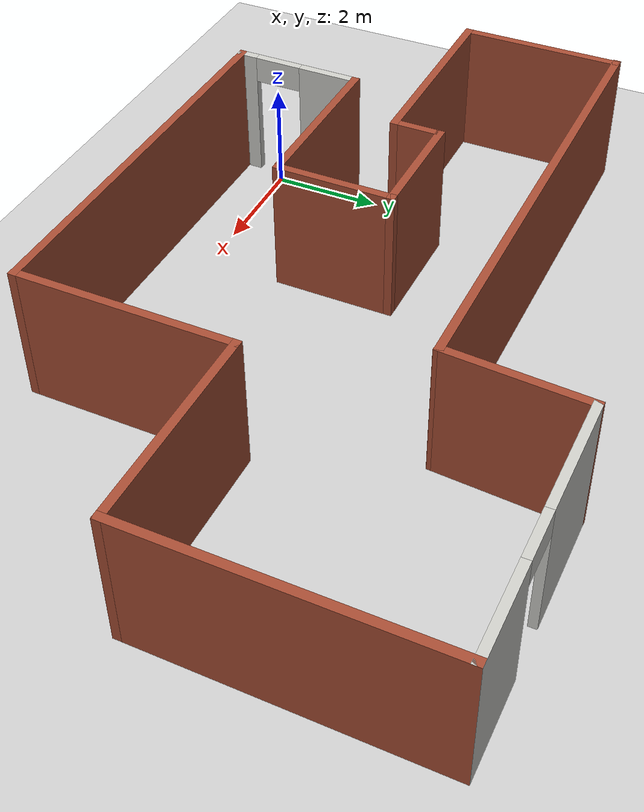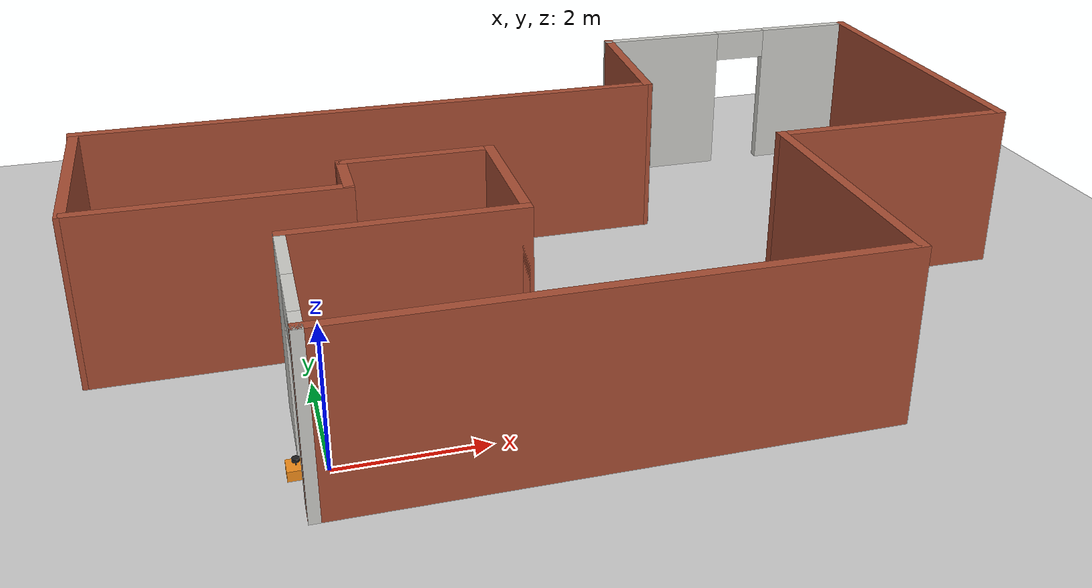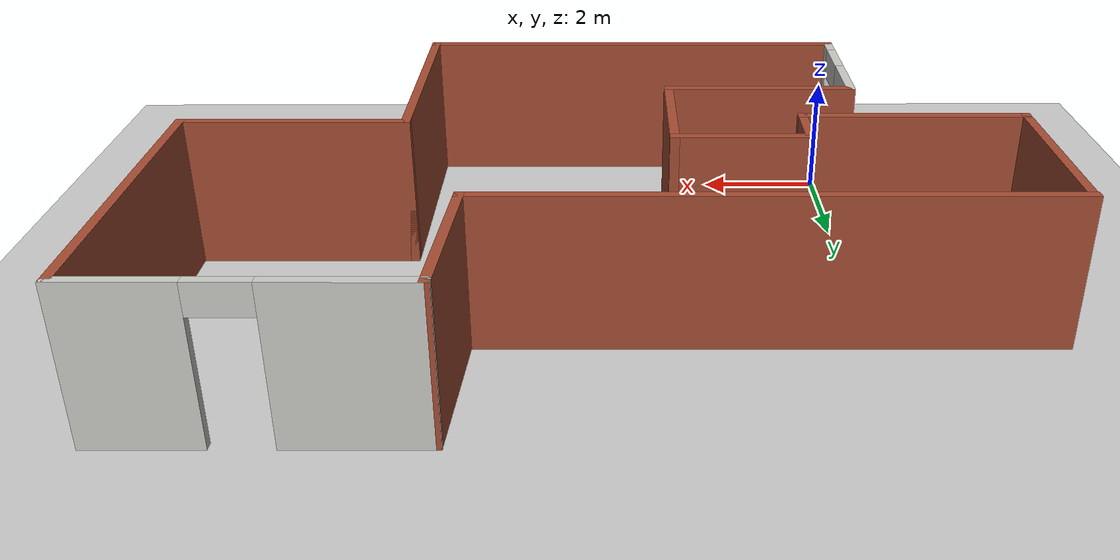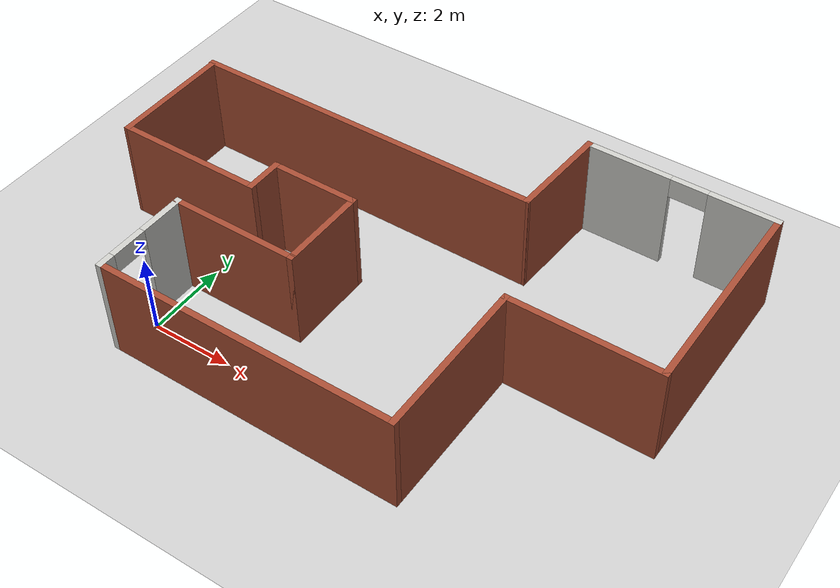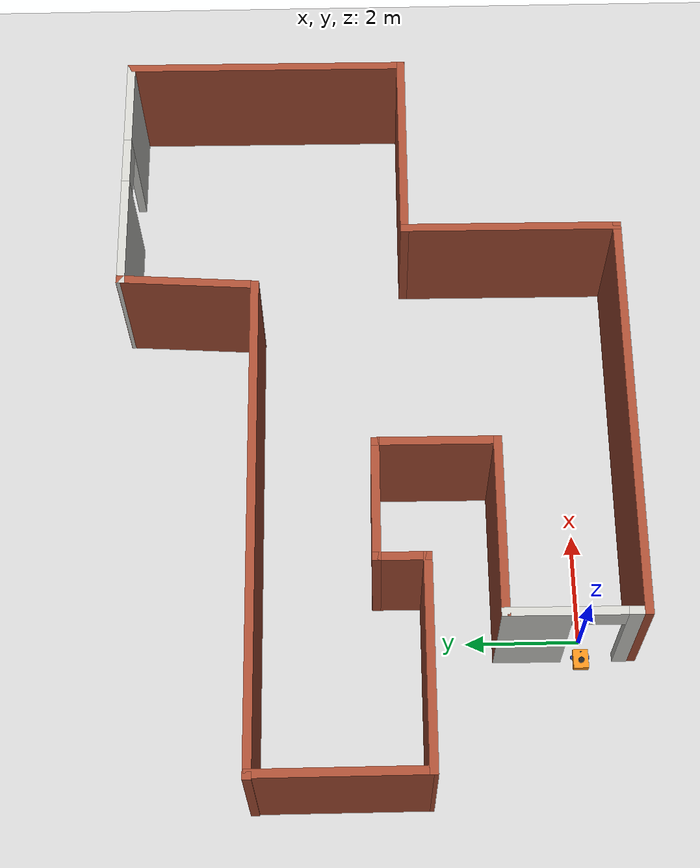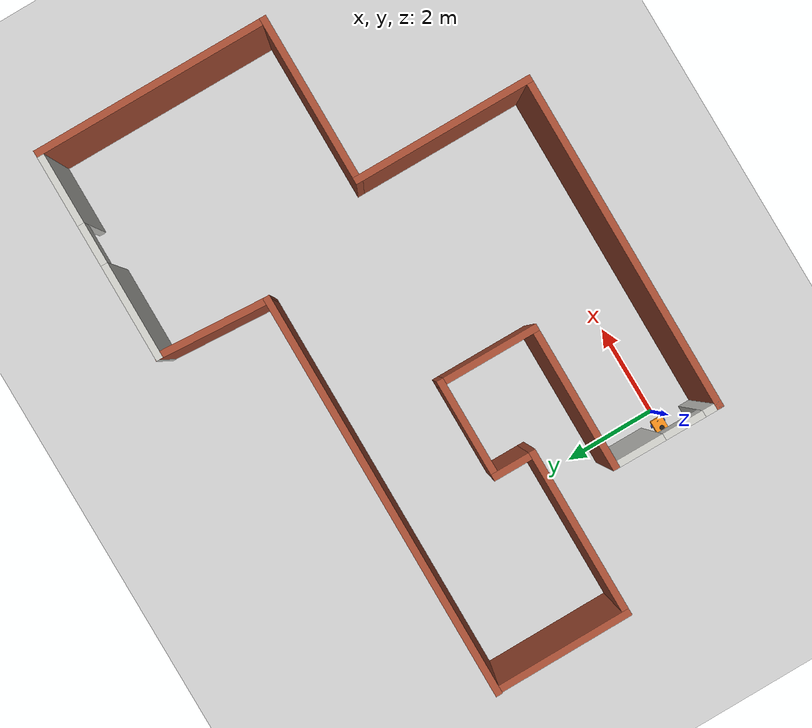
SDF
<sdf version="1.7">
 <world name="default">
  <light name="sun" type="directional">
   <pose>0 0 10 0 -0 0</pose>
   <diffuse>0.8 0.8 0.8 1</diffuse>
   <specular>0.2 0.2 0.2 1</specular>
   <attenuation>
    <range>1000</range>
    <constant>0.9</constant>
    <linear>0.01</linear>
    <quadratic>0.001</quadratic>
   </attenuation>
   <direction>-0.5 0.1 -0.9</direction>
   <spot><inner_angle>0</inner_angle><outer_angle>0</outer_angle><falloff>0</falloff></spot>
  </light>
  <model name="ground_plane">
   <static>1</static>
   <link name="link">
    <collision name="collision">
     <geometry><plane><normal>0 0 1</normal><size>100 100</size></plane></geometry>
     <surface><friction><ode><mu>100</mu><mu2>50</mu2></ode></friction></surface>
    </collision>
    <visual name="visual">
     <cast_shadows>0</cast_shadows>
     <geometry><plane><normal>0 0 1</normal><size>100 100</size></plane></geometry>
     <material>
      <script><uri>file://media/materials/scripts/gazebo.material</uri><name>Gazebo/Grey</name></script>
     </material>
    </visual>
   </link>
  </model>
  <gravity>0 0 -9.8</gravity>
  <magnetic_field>6e-06 2.3e-05 -4.2e-05</magnetic_field>
  <atmosphere type="adiabatic"/>
  <physics type="ode">
   <max_step_size>0.001</max_step_size>
   <real_time_factor>1</real_time_factor>
   <real_time_update_rate>1000</real_time_update_rate>
  </physics>
  <scene><ambient>0.4 0.4 0.4 1</ambient><background>0.7 0.7 0.7 1</background><shadows>1</shadows></scene>
  <audio><device>default</device></audio>
  <spherical_coordinates>
   <surface_model>EARTH_WGS84</surface_model>
   <latitude_deg>0</latitude_deg>
   <longitude_deg>0</longitude_deg>
   <elevation>0</elevation>
   <heading_deg>0</heading_deg>
  </spherical_coordinates>
  <model name="sim_robot">
   <link name="base_link">
    <inertial>
     <pose>-0.067475 0 0.081098 0 -0 0</pose>
     <mass>0.61</mass>
     <inertia>
      <ixx>0.00561003</ixx>
      <ixy>0</ixy>
      <ixz>0.000453811</ixz>
      <iyy>0.00760348</iyy>
      <iyz>0</iyz>
      <izz>0.00797093</izz>
     </inertia>
    </inertial>
    <collision name="base_link_fixed_joint_lump__chassis_collision">
     <pose>-0.0585 0 0.059 0 -0 0</pose>
     <geometry><box><size>0.335 0.265 0.138</size></box></geometry>
    </collision>
    <collision name="base_link_fixed_joint_lump__caster_wheel_collision_1">
     <pose>-0.151 0 -0.023 0 -0 0</pose>
     <geometry><sphere><radius>0.01</radius></sphere></geometry>
     <surface><friction><ode><mu>0.001</mu><mu2>0.001</mu2></ode></friction></surface>
    </collision>
    <collision name="base_link_fixed_joint_lump__laser_frame_collision_2">
     <pose>-0.104 0 0.202 0 -0 0</pose>
     <geometry><cylinder><length>0.04</length><radius>0.05</radius></cylinder></geometry>
    </collision>
    <visual name="base_link_fixed_joint_lump__chassis_visual">
     <pose>-0.0585 0 0.059 0 -0 0</pose>
     <geometry><box><size>0.335 0.265 0.138</size></box></geometry>
     <material>
      <script><name>Gazebo/Orange</name><uri>file://media/materials/scripts/gazebo.material</uri></script>
     </material>
    </visual>
    <visual name="base_link_fixed_joint_lump__camera_link_visual_1">
     <pose>0.05 0 0.171 0 0.18 0</pose>
     <geometry><box><size>0.01 0.03 0.03</size></box></geometry>
     <material>
      <script><name>Gazebo/Black</name><uri>file://media/materials/scripts/gazebo.material</uri></script>
     </material>
    </visual>
    <visual name="base_link_fixed_joint_lump__camera_link_visual_2">
     <pose>0.041049 0 0.121808 0 0.18 0</pose>
     <geometry><cylinder><length>0.1</length><radius>0.002</radius></cylinder></geometry>
     <material>
      <script><name>Gazebo/Black</name><uri>file://media/materials/scripts/gazebo.material</uri></script>
     </material>
    </visual>
    <visual name="base_link_fixed_joint_lump__caster_wheel_visual_3">
     <pose>-0.151 0 -0.023 0 -0 0</pose>
     <geometry><sphere><radius>0.01</radius></sphere></geometry>
     <material>
      <script><name>Gazebo/White</name><uri>file://media/materials/scripts/gazebo.material</uri></script>
     </material>
    </visual>
    <visual name="base_link_fixed_joint_lump__laser_frame_visual_4">
     <pose>-0.104 0 0.202 0 -0 0</pose>
     <geometry><cylinder><length>0.04</length><radius>0.05</radius></cylinder></geometry>
     <material>
      <script><name>Gazebo/Black</name><uri>file://media/materials/scripts/gazebo.material</uri></script>
     </material>
    </visual>
    <visual name="base_link_fixed_joint_lump__laser_frame_visual_5">
     <pose>-0.104 0 0.152 0 -0 0</pose>
     <geometry><cylinder><length>0.1</length><radius>0.01</radius></cylinder></geometry>
     <material>
      <script><name>Gazebo/Black</name><uri>file://media/materials/scripts/gazebo.material</uri></script>
     </material>
    </visual>
    <sensor name="camera" type="camera">
     <visualize>1</visualize>
     <update_rate>10</update_rate>
     <camera>
      <horizontal_fov>1.089</horizontal_fov>
      <image><format>R8G8B8</format><width>640</width><height>480</height></image>
      <clip><near>0.05</near><far>8</far></clip>
     </camera>
     <plugin name="camera_controller" filename="libgazebo_ros_camera.so">
      <frame_name>camera_link_optical</frame_name>
     </plugin>
     <pose>0.05 0 0.171 0 0.18 0</pose>
    </sensor>
    <sensor name="laser" type="ray">
     <visualize>0</visualize>
     <update_rate>10</update_rate>
     <ray>
      <scan>
       <horizontal>
        <samples>360</samples>
        <min_angle>-3.14</min_angle>
        <max_angle>3.14</max_angle>
        <resolution>1</resolution>
       </horizontal>
       <vertical><samples>1</samples><min_angle>0</min_angle><max_angle>0</max_angle></vertical>
      </scan>
      <range><min>0.3</min><max>12</max></range>
     </ray>
     <plugin name="laser_controller" filename="libgazebo_ros_ray_sensor.so">
      <ros><argument>~/out:=scan</argument></ros>
      <output_type>sensor_msgs/LaserScan</output_type>
      <frame_name>laser_frame</frame_name>
     </plugin>
     <pose>-0.104 0 0.202 0 -0 0</pose>
    </sensor>
   </link>
   <joint name="left_wheel_joint" type="revolute">
    <pose relative_to="base_link">0 0.1485 0 -1.5708 0 0</pose>
    <parent>base_link</parent>
    <child>left_wheel</child>
    <axis>
     <xyz>0 0 1</xyz>
     <limit><lower>-1e+16</lower><upper>1e+16</upper></limit>
     <dynamics><spring_reference>0</spring_reference><spring_stiffness>0</spring_stiffness></dynamics>
    </axis>
   </joint>
   <link name="left_wheel">
    <pose relative_to="left_wheel_joint">0 0 0 0 -0 0</pose>
    <inertial>
     <mass>0.05</mass>
     <inertia>
      <ixx>1.64292e-05</ixx>
      <ixy>0</ixy>
      <ixz>0</ixz>
      <iyy>1.64292e-05</iyy>
      <iyz>0</iyz>
      <izz>2.7225e-05</izz>
     </inertia>
    </inertial>
    <collision name="left_wheel_collision">
     <geometry><sphere><radius>0.033</radius></sphere></geometry>
    </collision>
    <visual name="left_wheel_visual">
     <geometry><cylinder><length>0.026</length><radius>0.033</radius></cylinder></geometry>
     <material>
      <script><name>Gazebo/Blue</name><uri>file://media/materials/scripts/gazebo.material</uri></script>
     </material>
    </visual>
   </link>
   <joint name="right_wheel_joint" type="revolute">
    <pose relative_to="base_link">0 -0.1485 0 1.5708 -0 0</pose>
    <parent>base_link</parent>
    <child>right_wheel</child>
    <axis>
     <xyz>0 0 -1</xyz>
     <limit><lower>-1e+16</lower><upper>1e+16</upper></limit>
     <dynamics><spring_reference>0</spring_reference><spring_stiffness>0</spring_stiffness></dynamics>
    </axis>
   </joint>
   <link name="right_wheel">
    <pose relative_to="right_wheel_joint">0 0 0 0 -0 0</pose>
    <inertial>
     <mass>0.05</mass>
     <inertia>
      <ixx>1.64292e-05</ixx>
      <ixy>0</ixy>
      <ixz>0</ixz>
      <iyy>1.64292e-05</iyy>
      <iyz>0</iyz>
      <izz>2.7225e-05</izz>
     </inertia>
    </inertial>
    <collision name="right_wheel_collision">
     <geometry><sphere><radius>0.033</radius></sphere></geometry>
    </collision>
    <visual name="right_wheel_visual">
     <geometry><cylinder><length>0.026</length><radius>0.033</radius></cylinder></geometry>
     <material>
      <script><name>Gazebo/Blue</name><uri>file://media/materials/scripts/gazebo.material</uri></script>
     </material>
    </visual>
   </link>
   <static>0</static>
   <plugin name="diff_drive" filename="libgazebo_ros_diff_drive.so">
    <left_joint>left_wheel_joint</left_joint>
    <right_joint>right_wheel_joint</right_joint>
    <wheel_separation>0.297</wheel_separation>
    <wheel_diameter>0.066</wheel_diameter>
    <max_wheel_torque>200</max_wheel_torque>
    <max_wheel_acceleration>10.0</max_wheel_acceleration>
    <odometry_frame>odom</odometry_frame>
    <robot_base_frame>base_link</robot_base_frame>
    <publish_odom>1</publish_odom>
    <publish_odom_tf>1</publish_odom_tf>
    <publish_wheel_tf>1</publish_wheel_tf>
   </plugin>
   <pose>-0.28233 0.000942 0.032997 1.6e-05 1.8e-05 0.00185</pose>
  </model>
  <model name="maze">
   <pose>3.90251 3.56539 -0 0 -0 3.13544</pose>
   <link name="Wall_0">
    <collision name="Wall_0_Collision">
     <geometry><box><size>9 0.15 2.5</size></box></geometry>
     <pose>0 0 1.25 0 -0 0</pose>
    </collision>
    <visual name="Wall_0_Visual">
     <pose>0 0 1.25 0 -0 0</pose>
     <geometry><box><size>9 0.15 2.5</size></box></geometry>
     <material>
      <script><uri>file://media/materials/scripts/gazebo.material</uri><name>Gazebo/Bricks</name></script>
      <ambient>1 1 1 1</ambient>
     </material>
     <meta><layer>0</layer></meta>
    </visual>
    <pose>2.37011 -2.07344 0 0 -0 0</pose>
   </link>
   <link name="Wall_1">
    <collision name="Wall_1_Collision">
     <geometry><box><size>3.08052 0.15 2.5</size></box></geometry>
     <pose>0 0 1.25 0 -0 0</pose>
    </collision>
    <visual name="Wall_1_Visual">
     <pose>0 0 1.25 0 -0 0</pose>
     <geometry><box><size>3.08052 0.15 2.5</size></box></geometry>
     <material>
      <script><uri>file://media/materials/scripts/gazebo.material</uri><name>Gazebo/Bricks</name></script>
      <ambient>1 1 1 1</ambient>
     </material>
     <meta><layer>0</layer></meta>
    </visual>
    <pose>6.76494 -0.588103 0 0 -0 1.57766</pose>
   </link>
   <link name="Wall_10">
    <collision name="Wall_10_Collision">
     <geometry><box><size>4 0.15 2.5</size></box></geometry>
     <pose>0 0 1.25 0 -0 0</pose>
    </collision>
    <visual name="Wall_10_Visual">
     <pose>0 0 1.25 0 -0 0</pose>
     <geometry><box><size>4 0.15 2.5</size></box></geometry>
     <material>
      <script><uri>file://media/materials/scripts/gazebo.material</uri><name>Gazebo/Bricks</name></script>
      <ambient>1 1 1 1</ambient>
     </material>
     <meta><layer>0</layer></meta>
    </visual>
    <pose>-3.19511 2.55212 0 0 -0 -1.5708</pose>
   </link>
   <link name="Wall_11">
    <collision name="Wall_11_Collision">
     <geometry><box><size>3.75 0.15 2.5</size></box></geometry>
     <pose>0 0 1.25 0 -0 0</pose>
    </collision>
    <visual name="Wall_11_Visual">
     <pose>0 0 1.25 0 -0 0</pose>
     <geometry><box><size>3.75 0.15 2.5</size></box></geometry>
     <material>
      <script><uri>file://media/materials/scripts/gazebo.material</uri><name>Gazebo/Bricks</name></script>
      <ambient>1 1 1 1</ambient>
     </material>
     <meta><layer>0</layer></meta>
    </visual>
    <pose>-4.99511 0.627124 0 0 -0 3.14159</pose>
   </link>
   <link name="Wall_12">
    <collision name="Wall_12_Collision">
     <geometry><box><size>5.25 0.15 2.5</size></box></geometry>
     <pose>0 0 1.25 0 -0 0</pose>
    </collision>
    <visual name="Wall_12_Visual">
     <pose>0 0 1.25 0 -0 0</pose>
     <geometry><box><size>5.25 0.15 2.5</size></box></geometry>
     <material>
      <script><uri>file://media/materials/scripts/gazebo.material</uri><name>Gazebo/Bricks</name></script>
      <ambient>1 1 1 1</ambient>
     </material>
     <meta><layer>0</layer></meta>
    </visual>
    <pose>-6.79511 -1.92288 0 0 -0 -1.5708</pose>
   </link>
   <link name="Wall_13">
    <pose>-4.49511 -4.47288 0 0 -0 0</pose>
    <visual name="Wall_13_Visual_0">
     <pose>-1.52365 0 1.25 0 -0 0</pose>
     <geometry><box><size>1.70271 0.15 2.5</size></box></geometry>
     <material>
      <script><uri>file://media/materials/scripts/gazebo.material</uri><name>Gazebo/CeilingTiled</name></script>
      <ambient>0.996078 0.47451 0.0196078 1</ambient>
     </material>
     <meta><layer>0</layer></meta>
    </visual>
    <collision name="Wall_13_Collision_0">
     <geometry><box><size>1.70271 0.15 2.5</size></box></geometry>
     <pose>-1.52365 0 1.25 0 -0 0</pose>
    </collision>
    <visual name="Wall_13_Visual_1">
     <pose>1.30135 0 1.25 0 -0 0</pose>
     <geometry><box><size>2.14729 0.15 2.5</size></box></geometry>
     <material>
      <script><uri>file://media/materials/scripts/gazebo.material</uri><name>Gazebo/CeilingTiled</name></script>
      <ambient>0.996078 0.47451 0.0196078 1</ambient>
     </material>
     <meta><layer>0</layer></meta>
    </visual>
    <collision name="Wall_13_Collision_1">
     <geometry><box><size>2.14729 0.15 2.5</size></box></geometry>
     <pose>1.30135 0 1.25 0 -0 0</pose>
    </collision>
    <visual name="Wall_13_Visual_2">
     <pose>-0.222293 0 2.25 0 -0 0</pose>
     <geometry><box><size>0.9 0.15 0.5</size></box></geometry>
     <material>
      <script><uri>file://media/materials/scripts/gazebo.material</uri><name>Gazebo/CeilingTiled</name></script>
      <ambient>0.996078 0.47451 0.0196078 1</ambient>
     </material>
     <meta><layer>0</layer></meta>
    </visual>
    <collision name="Wall_13_Collision_2">
     <geometry><box><size>0.9 0.15 0.5</size></box></geometry>
     <pose>-0.222293 0 2.25 0 -0 0</pose>
    </collision>
   </link>
   <link name="Wall_14">
    <collision name="Wall_14_Collision">
     <geometry><box><size>2.55353 0.15 2.5</size></box></geometry>
     <pose>0 0 1.25 0 -0 0</pose>
    </collision>
    <visual name="Wall_14_Visual">
     <pose>0 0 1.25 0 -0 0</pose>
     <geometry><box><size>2.55353 0.15 2.5</size></box></geometry>
     <material>
      <script><uri>file://media/materials/scripts/gazebo.material</uri><name>Gazebo/Bricks</name></script>
      <ambient>1 1 1 1</ambient>
     </material>
     <meta><layer>0</layer></meta>
    </visual>
    <pose>-2.125 -3.27316 0 0 -0 1.51242</pose>
   </link>
   <link name="Wall_2">
    <collision name="Wall_2_Collision">
     <geometry><box><size>3.75 0.15 2.5</size></box></geometry>
     <pose>0 0 1.25 0 -0 0</pose>
    </collision>
    <visual name="Wall_2_Visual">
     <pose>0 0 1.25 0 -0 0</pose>
     <geometry><box><size>3.75 0.15 2.5</size></box></geometry>
     <material>
      <script><uri>file://media/materials/scripts/gazebo.material</uri><name>Gazebo/Bricks</name></script>
      <ambient>1 1 1 1</ambient>
     </material>
     <meta><layer>0</layer></meta>
    </visual>
    <pose>4.95489 0.877124 0 0 -0 3.14159</pose>
   </link>
   <link name="Wall_4">
    <collision name="Wall_4_Collision">
     <geometry><box><size>1 0.15 2.5</size></box></geometry>
     <pose>0 0 1.25 0 -0 0</pose>
    </collision>
    <visual name="Wall_4_Visual">
     <pose>0 0 1.25 0 -0 0</pose>
     <geometry><box><size>1 0.15 2.5</size></box></geometry>
     <material>
      <script><uri>file://media/materials/scripts/gazebo.material</uri><name>Gazebo/Bricks</name></script>
      <ambient>1 1 1 1</ambient>
     </material>
     <meta><layer>0</layer></meta>
    </visual>
    <pose>3.15489 0.452124 0 0 -0 -1.5708</pose>
   </link>
   <link name="Wall_5">
    <collision name="Wall_5_Collision">
     <geometry><box><size>2.25 0.15 2.5</size></box></geometry>
     <pose>0 0 1.25 0 -0 0</pose>
    </collision>
    <visual name="Wall_5_Visual">
     <pose>0 0 1.25 0 -0 0</pose>
     <geometry><box><size>2.25 0.15 2.5</size></box></geometry>
     <material>
      <script><uri>file://media/materials/scripts/gazebo.material</uri><name>Gazebo/Bricks</name></script>
      <ambient>1 1 1 1</ambient>
     </material>
     <meta><layer>0</layer></meta>
    </visual>
    <pose>2.10489 0.027124 0 0 -0 3.14159</pose>
   </link>
   <link name="Wall_6">
    <collision name="Wall_6_Collision">
     <geometry><box><size>2.25 0.15 2.5</size></box></geometry>
     <pose>0 0 1.25 0 -0 0</pose>
    </collision>
    <visual name="Wall_6_Visual">
     <pose>0 0 1.25 0 -0 0</pose>
     <geometry><box><size>2.25 0.15 2.5</size></box></geometry>
     <material>
      <script><uri>file://media/materials/scripts/gazebo.material</uri><name>Gazebo/Bricks</name></script>
      <ambient>1 1 1 1</ambient>
     </material>
     <meta><layer>0</layer></meta>
    </visual>
    <pose>1.05489 1.07712 0 0 -0 1.5708</pose>
   </link>
   <link name="Wall_7">
    <collision name="Wall_7_Collision">
     <geometry><box><size>3.25 0.15 2.5</size></box></geometry>
     <pose>0 0 1.25 0 -0 0</pose>
    </collision>
    <visual name="Wall_7_Visual">
     <pose>0 0 1.25 0 -0 0</pose>
     <geometry><box><size>3.25 0.15 2.5</size></box></geometry>
     <material>
      <script><uri>file://media/materials/scripts/gazebo.material</uri><name>Gazebo/Bricks</name></script>
      <ambient>1 1 1 1</ambient>
     </material>
     <meta><layer>0</layer></meta>
    </visual>
    <pose>2.60489 2.12712 0 0 -0 0</pose>
   </link>
   <link name="Wall_8">
    <pose>4.15489 3.30212 0 0 -0 1.5708</pose>
    <visual name="Wall_8_Visual_0">
     <pose>-0.655324 0 1.25 0 -0 0</pose>
     <geometry><box><size>1.18935 0.15 2.5</size></box></geometry>
     <material>
      <script><uri>file://media/materials/scripts/gazebo.material</uri><name>Gazebo/CeilingTiled</name></script>
      <ambient>0.996078 0.47451 0.0196078 1</ambient>
     </material>
     <meta><layer>0</layer></meta>
    </visual>
    <collision name="Wall_8_Collision_0">
     <geometry><box><size>1.18935 0.15 2.5</size></box></geometry>
     <pose>-0.655324 0 1.25 0 -0 0</pose>
    </collision>
    <visual name="Wall_8_Visual_1">
     <pose>1.04468 0 1.25 0 -0 0</pose>
     <geometry><box><size>0.410647 0.15 2.5</size></box></geometry>
     <material>
      <script><uri>file://media/materials/scripts/gazebo.material</uri><name>Gazebo/CeilingTiled</name></script>
      <ambient>0.996078 0.47451 0.0196078 1</ambient>
     </material>
     <meta><layer>0</layer></meta>
    </visual>
    <collision name="Wall_8_Collision_1">
     <geometry><box><size>0.410647 0.15 2.5</size></box></geometry>
     <pose>1.04468 0 1.25 0 -0 0</pose>
    </collision>
    <visual name="Wall_8_Visual_2">
     <pose>0.389353 0 2.25 0 -0 0</pose>
     <geometry><box><size>0.9 0.15 0.5</size></box></geometry>
     <material>
      <script><uri>file://media/materials/scripts/gazebo.material</uri><name>Gazebo/CeilingTiled</name></script>
      <ambient>0.996078 0.47451 0.0196078 1</ambient>
     </material>
     <meta><layer>0</layer></meta>
    </visual>
    <collision name="Wall_8_Collision_2">
     <geometry><box><size>0.9 0.15 0.5</size></box></geometry>
     <pose>0.389353 0 2.25 0 -0 0</pose>
    </collision>
   </link>
   <link name="Wall_9">
    <collision name="Wall_9_Collision">
     <geometry><box><size>7.5 0.15 2.5</size></box></geometry>
     <pose>0 0 1.25 0 -0 0</pose>
    </collision>
    <visual name="Wall_9_Visual">
     <pose>0 0 1.25 0 -0 0</pose>
     <geometry><box><size>7.5 0.15 2.5</size></box></geometry>
     <material>
      <script><uri>file://media/materials/scripts/gazebo.material</uri><name>Gazebo/Bricks</name></script>
      <ambient>1 1 1 1</ambient>
     </material>
     <meta><layer>0</layer></meta>
    </visual>
    <pose>0.479887 4.47712 0 0 -0 3.14159</pose>
   </link>
   <static>1</static>
  </model>
 </world>
</sdf>
